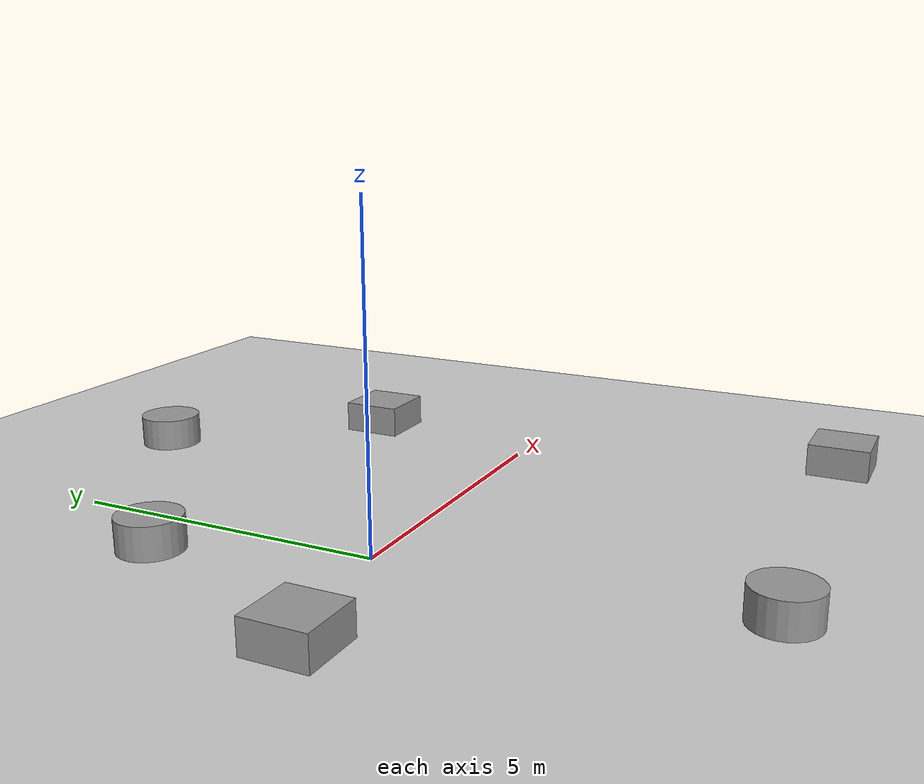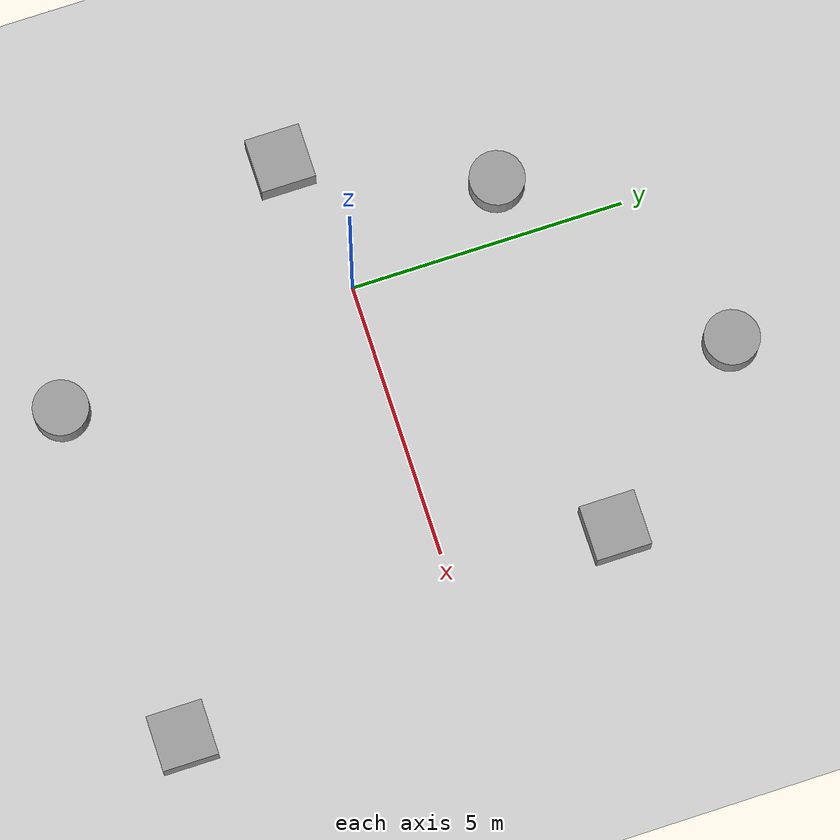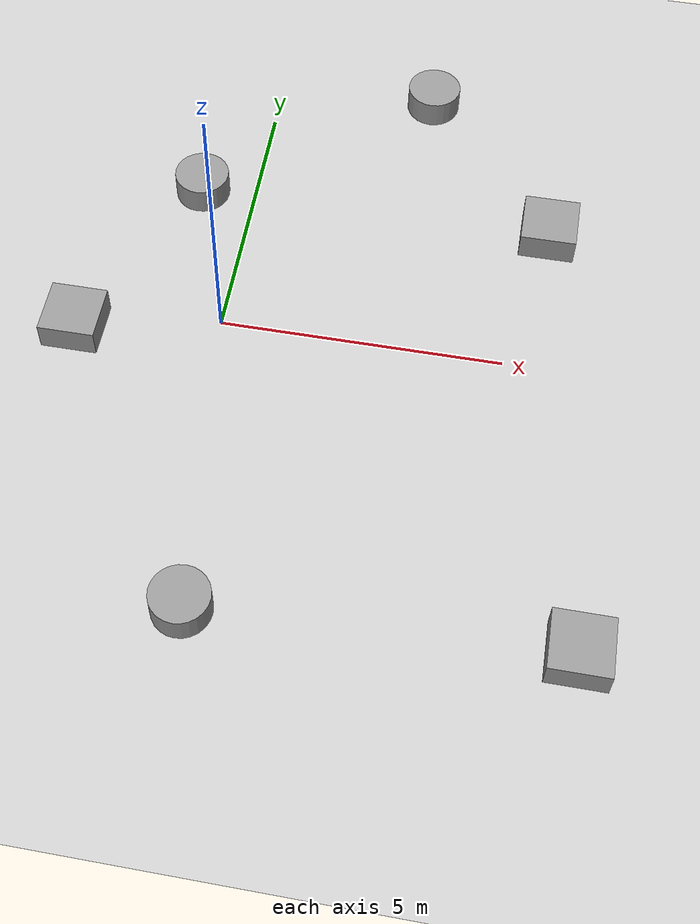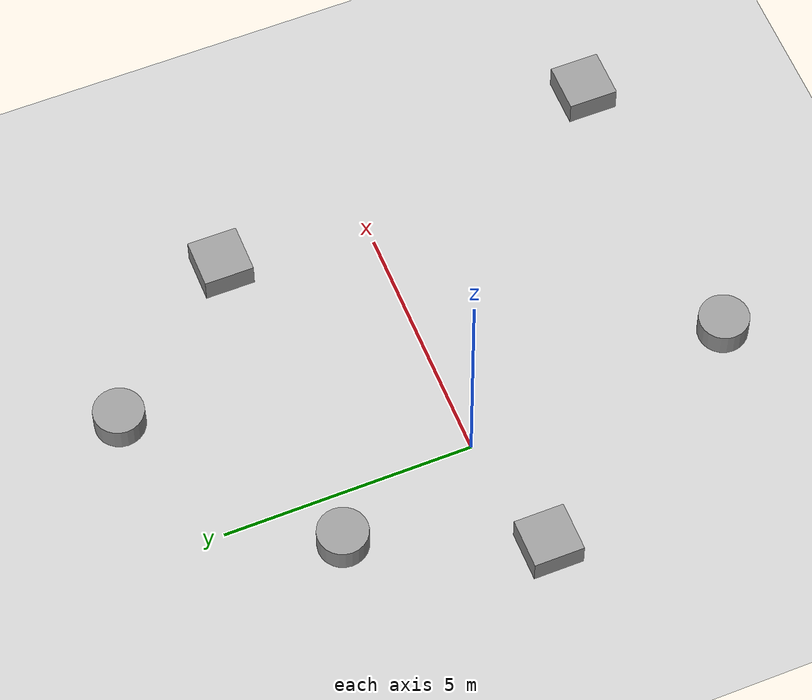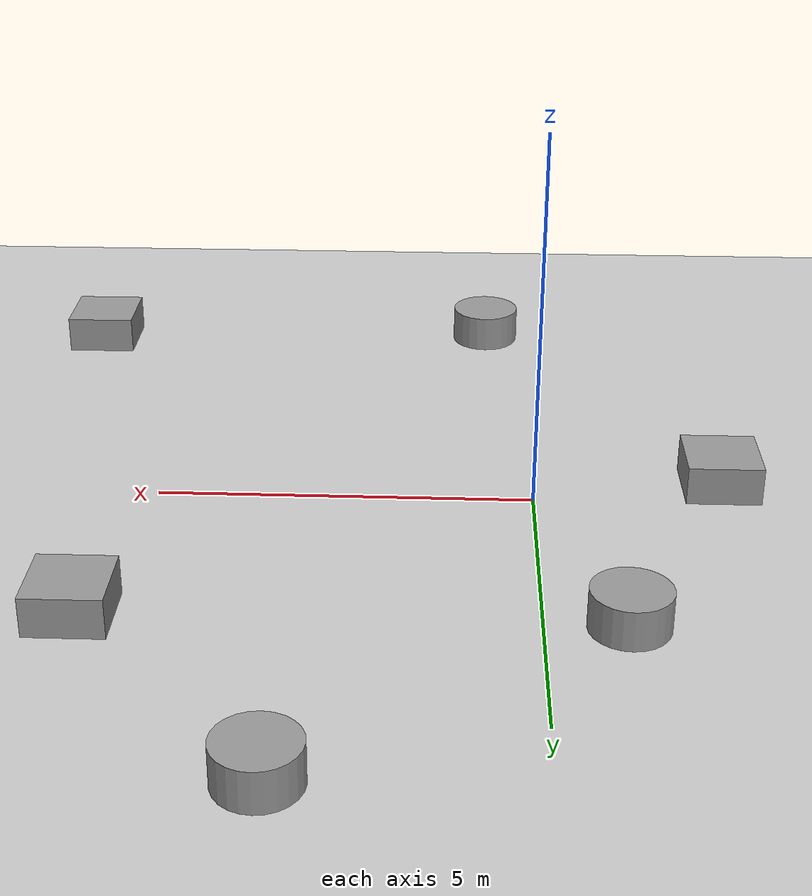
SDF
<sdf version="1.4">
 <world name="default">
  <light name="sun" type="directional">
   <pose>0 0 10 0 -0 0</pose>
   <diffuse>0.8 0.8 0.8 1</diffuse>
   <specular>0.2 0.2 0.2 1</specular>
   <attenuation>
    <range>1000</range>
    <constant>0.9</constant>
    <linear>0.01</linear>
    <quadratic>0.001</quadratic>
   </attenuation>
   <direction>-0.5 0.1 -0.9</direction>
  </light>
  <model name="ground_plane">
   <static>1</static>
   <link name="link">
    <collision name="collision">
     <geometry><plane><normal>0 0 1</normal><size>100 100</size></plane></geometry>
     <surface><friction><ode><mu>100</mu><mu2>50</mu2></ode></friction></surface>
    </collision>
    <visual name="visual">
     <cast_shadows>0</cast_shadows>
     <geometry><plane><normal>0 0 1</normal><size>100 100</size></plane></geometry>
     <material>
      <script><uri>file://media/materials/scripts/gazebo.material</uri><name>Gazebo/Grey</name></script>
     </material>
    </visual>
    <velocity_decay><linear>0</linear><angular>0</angular></velocity_decay>
   </link>
  </model>
  <physics type="ode">
   <max_step_size>0.001</max_step_size>
   <real_time_factor>1</real_time_factor>
   <real_time_update_rate>1000</real_time_update_rate>
   <gravity>0 0 -9.8</gravity>
  </physics>
  <scene><ambient>0.4 0.4 0.4 1</ambient><background>0.7 0.7 0.7 1</background><shadows>1</shadows></scene>
  <spherical_coordinates>
   <surface_model>EARTH_WGS84</surface_model>
   <latitude_deg>0</latitude_deg>
   <longitude_deg>0</longitude_deg>
   <elevation>0</elevation>
   <heading_deg>0</heading_deg>
  </spherical_coordinates>
  <model name="unit_box_1">
   <pose>-2.52031 -0.518792 0.005492 0 -0 0</pose>
   <link name="link">
    <inertial>
     <mass>1</mass>
     <inertia><ixx>1</ixx><ixy>0</ixy><ixz>0</ixz><iyy>1</iyy><iyz>0</iyz><izz>1</izz></inertia>
    </inertial>
    <collision name="collision"><geometry><box><size>1 1 0.010984</size></box></geometry></collision>
    <visual name="visual">
     <geometry><box><size>1 1 1</size></box></geometry>
     <material>
      <script><uri>file://media/materials/scripts/gazebo.material</uri><name>Gazebo/Grey</name></script>
     </material>
    </visual>
    <velocity_decay><linear>0</linear><angular>0</angular></velocity_decay>
   </link>
   <static>0</static>
  </model>
  <model name="unit_cylinder_1">
   <pose>-1 3 0.006215 0 -0 0</pose>
   <link name="link">
    <inertial>
     <mass>1</mass>
     <inertia><ixx>1</ixx><ixy>0</ixy><ixz>0</ixz><iyy>1</iyy><iyz>0</iyz><izz>1</izz></inertia>
    </inertial>
    <collision name="collision">
     <geometry><cylinder><radius>0.5</radius><length>0.0124307</length></cylinder></geometry>
    </collision>
    <visual name="visual">
     <geometry><cylinder><radius>0.5</radius><length>1</length></cylinder></geometry>
     <material>
      <script><uri>file://media/materials/scripts/gazebo.material</uri><name>Gazebo/Grey</name></script>
     </material>
    </visual>
    <velocity_decay><linear>0</linear><angular>0</angular></velocity_decay>
   </link>
   <static>0</static>
  </model>
  <model name="unit_box_2">
   <pose>6.71253 -5.23101 0.011341 0 -0 0</pose>
   <link name="link">
    <inertial>
     <mass>1</mass>
     <inertia><ixx>1</ixx><ixy>0</ixy><ixz>0</ixz><iyy>1</iyy><iyz>0</iyz><izz>1</izz></inertia>
    </inertial>
    <collision name="collision"><geometry><box><size>1 1 0.022683</size></box></geometry></collision>
    <visual name="visual">
     <geometry><box><size>1 1 1</size></box></geometry>
     <material>
      <script><uri>file://media/materials/scripts/gazebo.material</uri><name>Gazebo/Grey</name></script>
     </material>
    </visual>
    <velocity_decay><linear>0</linear><angular>0</angular></velocity_decay>
   </link>
   <static>0</static>
  </model>
  <model name="unit_box_3">
   <pose>5.53417 3 0.007113 0 -0 0</pose>
   <link name="link">
    <inertial>
     <mass>1</mass>
     <inertia><ixx>1</ixx><ixy>0</ixy><ixz>0</ixz><iyy>1</iyy><iyz>0</iyz><izz>1</izz></inertia>
    </inertial>
    <collision name="collision"><geometry><box><size>1 1 0.014227</size></box></geometry></collision>
    <visual name="visual">
     <geometry><box><size>1 1 1</size></box></geometry>
     <material>
      <script><uri>file://media/materials/scripts/gazebo.material</uri><name>Gazebo/Grey</name></script>
     </material>
    </visual>
    <velocity_decay><linear>0</linear><angular>0</angular></velocity_decay>
   </link>
   <static>0</static>
  </model>
  <model name="unit_cylinder_2">
   <pose>3 6 0.006869 0 -0 0</pose>
   <link name="link">
    <inertial>
     <mass>1</mass>
     <inertia><ixx>1</ixx><ixy>0</ixy><ixz>0</ixz><iyy>1</iyy><iyz>0</iyz><izz>1</izz></inertia>
    </inertial>
    <collision name="collision">
     <geometry><cylinder><radius>0.5</radius><length>0.0137559</length></cylinder></geometry>
    </collision>
    <visual name="visual">
     <geometry><cylinder><radius>0.5</radius><length>1</length></cylinder></geometry>
     <material>
      <script><uri>file://media/materials/scripts/gazebo.material</uri><name>Gazebo/Grey</name></script>
     </material>
    </visual>
    <velocity_decay><linear>0</linear><angular>0</angular></velocity_decay>
   </link>
   <static>0</static>
  </model>
  <model name="unit_cylinder_3">
   <pose>0.577608 -5.51647 0.00792 0 -0 0</pose>
   <link name="link">
    <inertial>
     <mass>1</mass>
     <inertia><ixx>1</ixx><ixy>0</ixy><ixz>0</ixz><iyy>1</iyy><iyz>0</iyz><izz>1</izz></inertia>
    </inertial>
    <collision name="collision">
     <geometry><cylinder><radius>0.5</radius><length>0.0158415</length></cylinder></geometry>
    </collision>
    <visual name="visual">
     <geometry><cylinder><radius>0.5</radius><length>1</length></cylinder></geometry>
     <material>
      <script><uri>file://media/materials/scripts/gazebo.material</uri><name>Gazebo/Grey</name></script>
     </material>
    </visual>
    <velocity_decay><linear>0</linear><angular>0</angular></velocity_decay>
   </link>
   <static>0</static>
  </model>
 </world>
</sdf>
